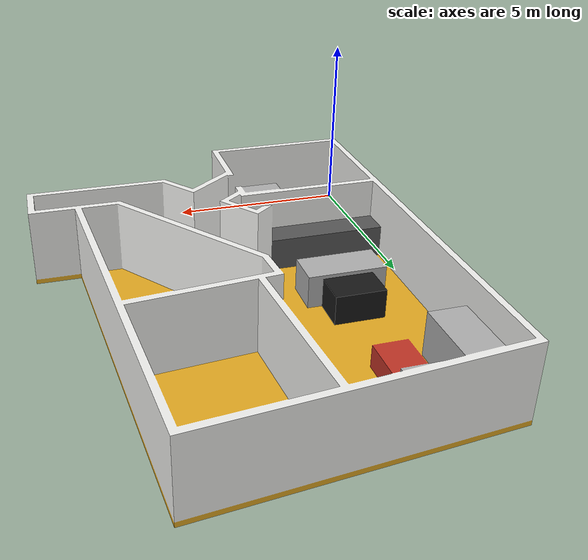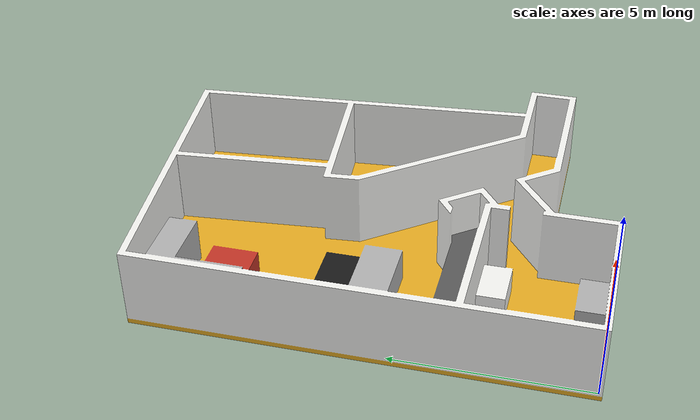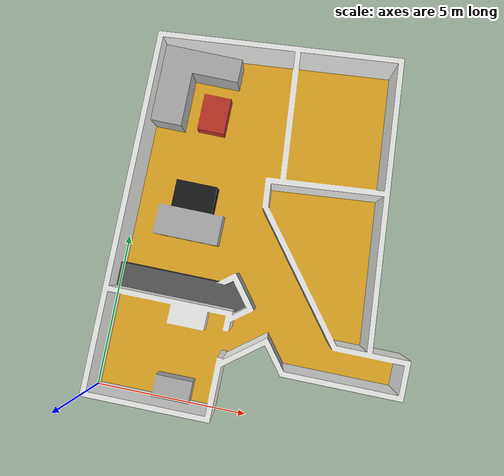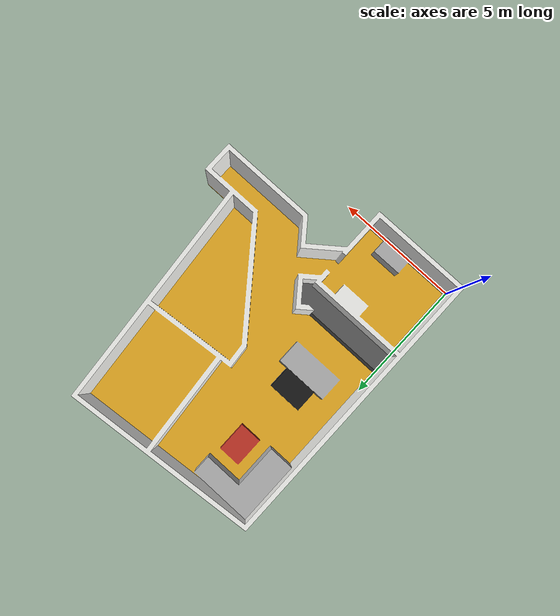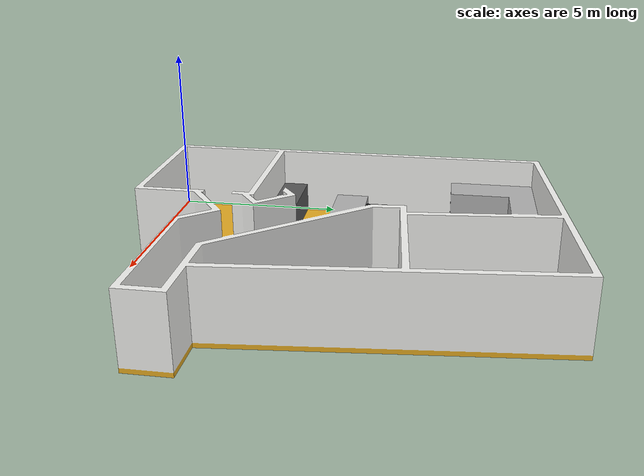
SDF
<sdf version="1.6">
  <world name="default">

    <include>
      <uri>model://my_3d_models/models/apartment</uri>
    </include>
    <light type="directional" name="sun">
      <cast_shadows>true</cast_shadows>
      <pose>0 0 10 0 0 0</pose>
      <diffuse>0.8 0.8 0.8 1</diffuse>
      <specular>0.2 0.2 0.2 1</specular>
      <attenuation>
        <range>1000</range>
        <constant>0.9</constant>
        <linear>0.01</linear>
        <quadratic>0.001</quadratic>
      </attenuation>
      <direction>-0.5 0.1 -0.9</direction>
    </light>
  </world>
</sdf>

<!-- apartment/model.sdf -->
<sdf version='1.4'>
  <model name="apartment">
    <static>1</static>
    <link name='link_1'>
      <visual name='visual'>
        <pose frame=''>0 0 0 0 0 0</pose>
        <geometry>
          <mesh>
            <uri>model://my_3d_models/models/apartment/meshes/Apartment.dae</uri>
            <scale>1 1 1</scale>
          </mesh>
        </geometry>
      </visual>
      <collision name="collision">
        <geometry>
          <plane>
            <normal>0 0 1</normal>
          </plane>
        </geometry>
      </collision>
    </link>
  </model>
</sdf>
